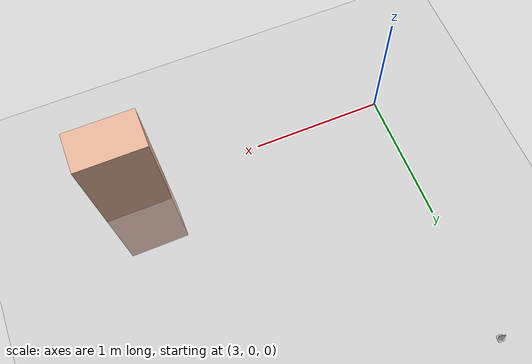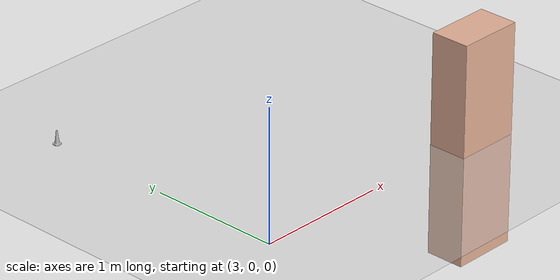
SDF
<?xml version="1.0"?>
<sdf version="1.6">
  <world name="default">

    <include>
      <uri>model://ground_plane</uri>
    </include>

    <include>
      <uri>model://sun</uri>
    </include>

    <!-- Use Gazebo model database models that look more realistic -->
    <!-- These need to be downloaded first -->

    <!-- Person standing -->
    <model name="person_standing">
      <pose>5 0 0 0 0 0</pose>
      <static>true</static>
      <link name="link">
        <collision name="collision">
          <geometry>
            <box>
              <size>0.5 0.3 1.7</size>
            </box>
          </geometry>
        </collision>
        <visual name="visual">
          <geometry>
            <box>
              <size>0.5 0.3 1.7</size>
            </box>
          </geometry>
          <material>
            <ambient>0.9 0.7 0.6 1</ambient>
            <diffuse>0.9 0.7 0.6 1</diffuse>
          </material>
        </visual>
      </link>
    </model>

    <!-- Traffic cone (orange) -->
    <model name="cone1">
      <pose>3 2 0 0 0 0</pose>
      <static>true</static>
      <link name="link">
        <collision name="collision">
          <geometry>
            <mesh>
              <uri>model://construction_cone/meshes/construction_cone.dae</uri>
            </mesh>
          </geometry>
        </collision>
        <visual name="visual">
          <geometry>
            <mesh>
              <uri>model://construction_cone/meshes/construction_cone.dae</uri>
            </mesh>
          </geometry>
        </visual>
      </link>
    </model>

  </world>
</sdf>
